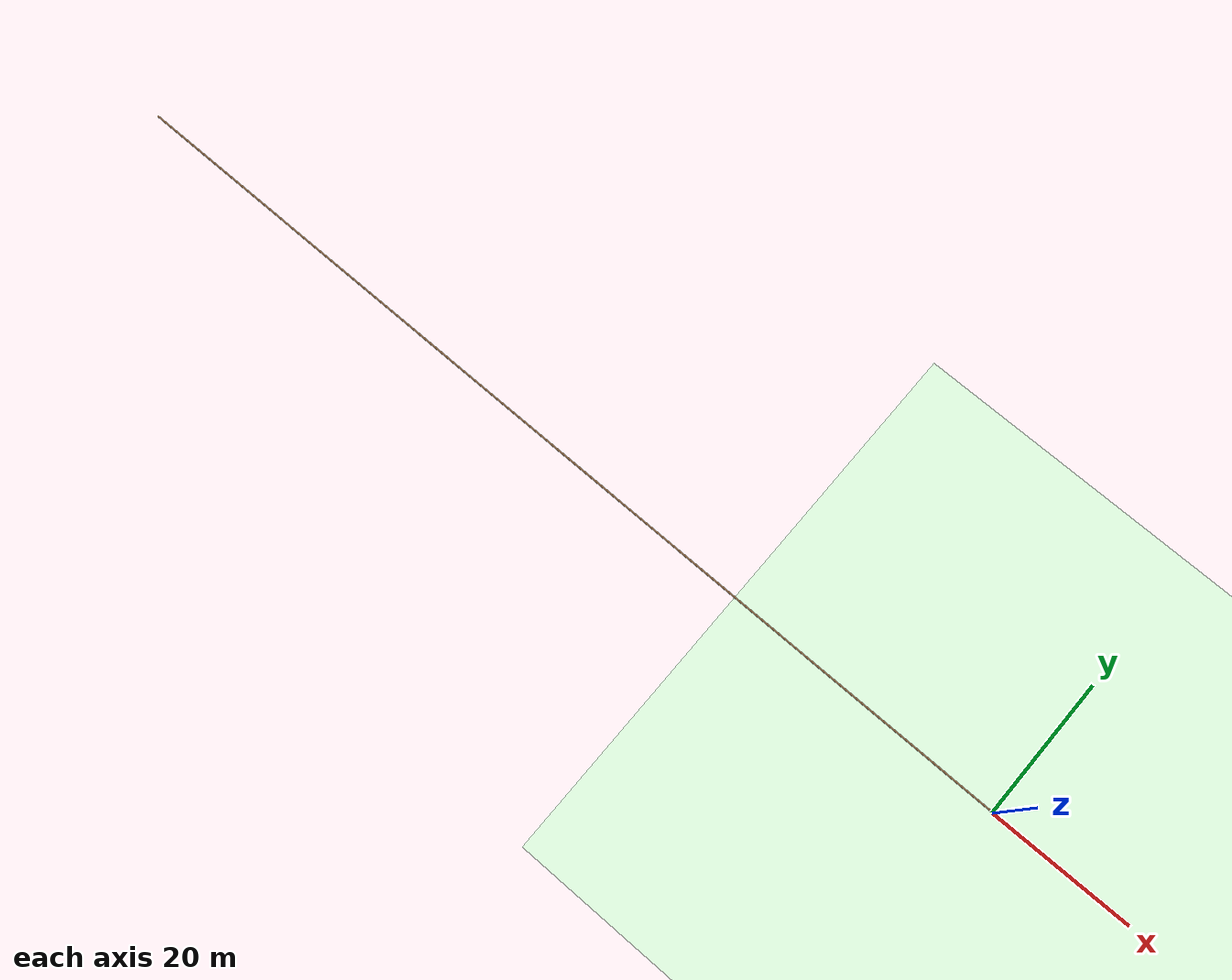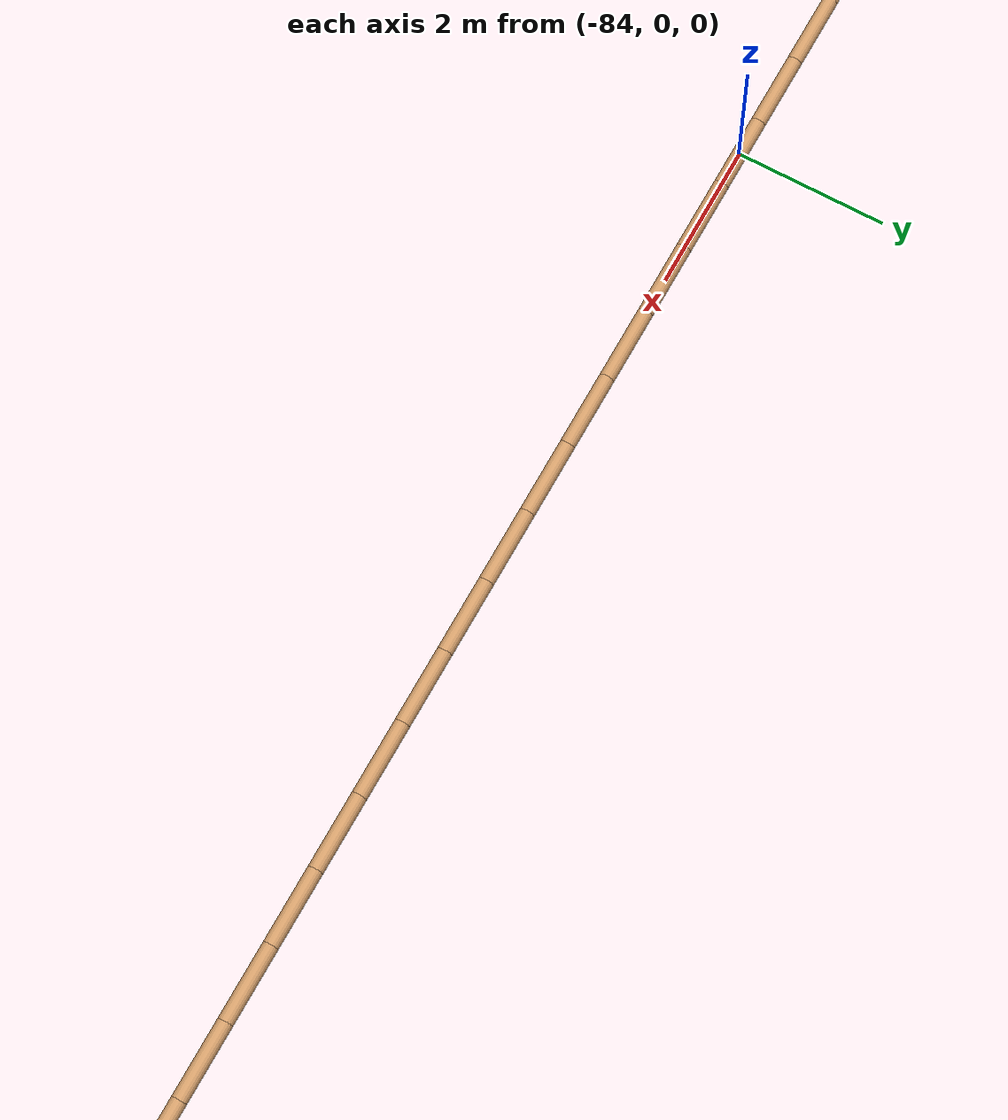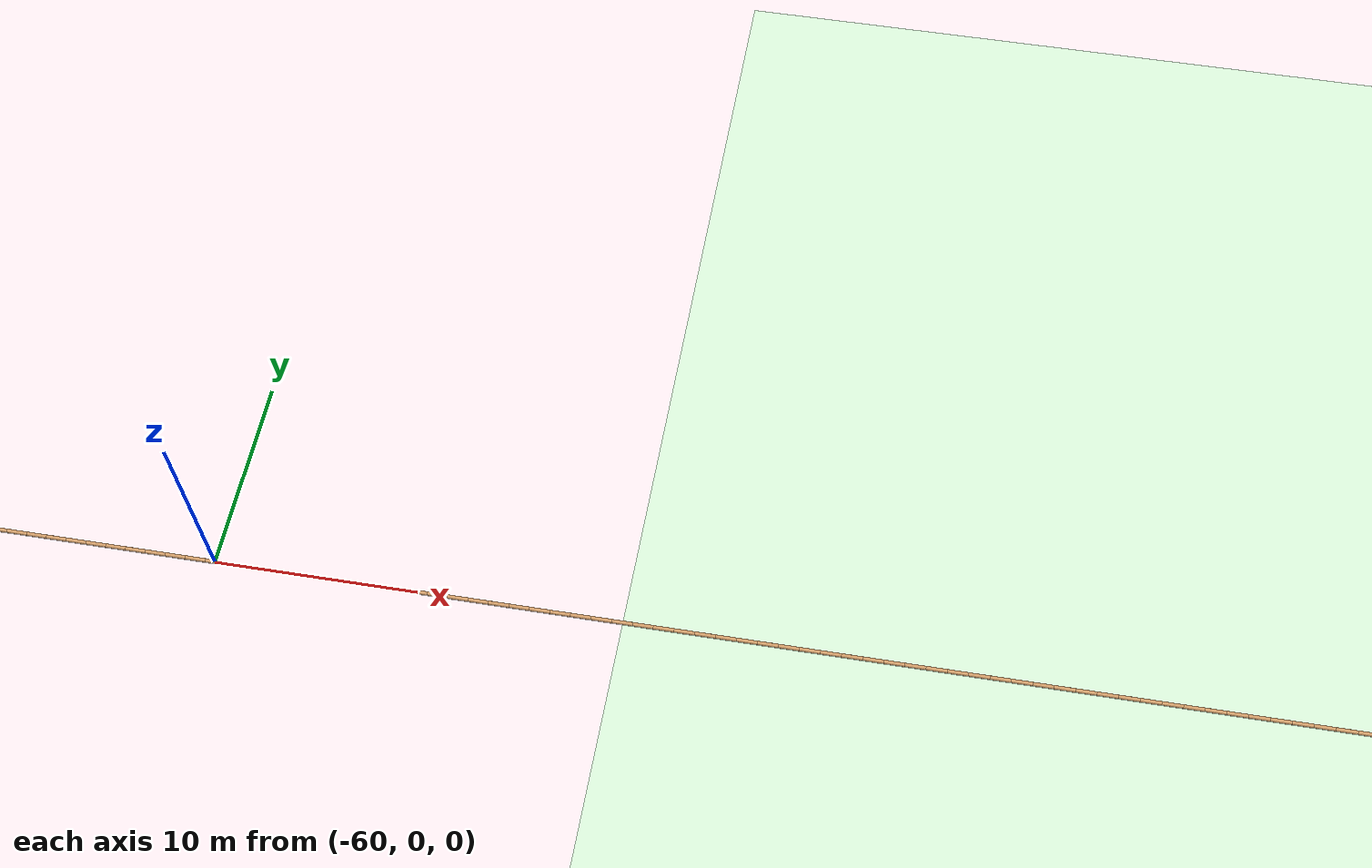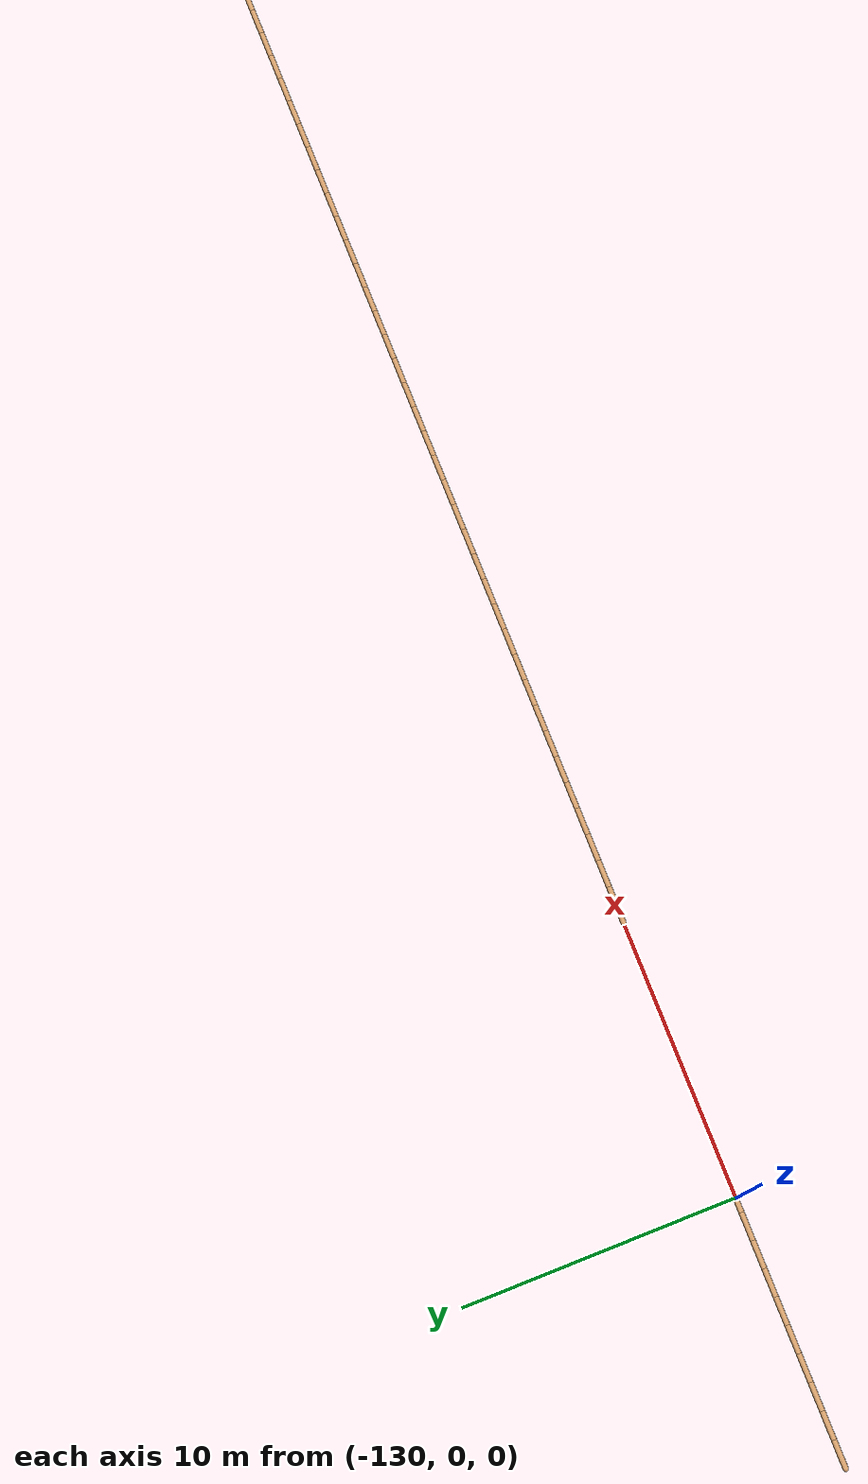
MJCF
<mujoco model="swimmer">
  <compiler angle="degree" coordinate="local" inertiafromgeom="true"/>
  <option collision="predefined" density="4000" integrator="RK4" timestep="0.01" viscosity="0.1"/>
  <default>
    <geom conaffinity="1" condim="1" contype="1" material="geom" rgba="0.8 0.6 .4 1"/>
    <joint armature='0.1'  />
  </default>
  <asset>
    <texture builtin="gradient" height="100" rgb1="1 1 1" rgb2="0 0 0" type="skybox" width="100"/>
    <texture builtin="flat" height="1278" mark="cross" markrgb="1 1 1" name="texgeom" random="0.01" rgb1="0.8 0.6 0.4" rgb2="0.8 0.6 0.4" type="cube" width="127"/>
    <texture builtin="checker" height="100" name="texplane" rgb1="0 0 0" rgb2="0.8 0.8 0.8" type="2d" width="100"/>
    <material name="MatPlane" reflectance="0.5" shininess="1" specular="1" texrepeat="30 30" texture="texplane"/>
    <material name="geom" texture="texgeom" texuniform="true"/>
  </asset>
  <worldbody>
    <light cutoff="100" diffuse="1 1 1" dir="-0 0 -1.3" directional="true" exponent="1" pos="0 0 1.3" specular=".1 .1 .1"/>
    <geom conaffinity="1" condim="3" material="MatPlane" name="floor" pos="0 0 -0.1" rgba="0.8 0.9 0.8 1" size="40 40 0.1" type="plane"/>
    <!--  ================= SWIMMER ================= /-->
    <body name="torso" pos="0 0 0">
      <geom density="1000" fromto="1.5 0 0 0.5 0 0" size="0.1" type="capsule"/>
      <joint axis="1 0 0" name="slider1" pos="0 0 0" type="slide"/>
      <joint axis="0 1 0" name="slider2" pos="0 0 0" type="slide"/>
      <joint axis="0 0 1" name="rot" pos="0 0 0" type="hinge"/>
      <body name="mid0" pos="0.5 0 0">
        <geom density="1000" fromto="0 0 0 -1 0 0" size="0.1" type="capsule"/>
        <joint axis="0 0 1" limited="true" name="rot0" pos="0 0 0" range="-100 100" type="hinge"/>

        <body name="mid1" pos="-1 0 0">
          <geom density="1000" fromto="0 0 0 -1 0 0" size="0.1" type="capsule"/>
          <joint axis="0 0 1" limited="true" name="rot1" pos="0 0 0" range="-100 100" type="hinge"/>

        <body name="mid2" pos="-1 0 0">
          <geom density="1000" fromto="0 0 0 -1 0 0" size="0.1" type="capsule"/>
          <joint axis="0 0 -1" limited="true" name="rot2" pos="0 0 0" range="-100 100" type="hinge"/>

        <body name="mid3" pos="-1 0 0">
          <geom density="1000" fromto="0 0 0 -1 0 0" size="0.1" type="capsule"/>
          <joint axis="0 0 1" limited="true" name="rot3" pos="0 0 0" range="-100 100" type="hinge"/>

        <body name="mid4" pos="-1 0 0">
          <geom density="1000" fromto="0 0 0 -1 0 0" size="0.1" type="capsule"/>
          <joint axis="0 0 -1" limited="true" name="rot4" pos="0 0 0" range="-100 100" type="hinge"/>

        <body name="mid5" pos="-1 0 0">
          <geom density="1000" fromto="0 0 0 -1 0 0" size="0.1" type="capsule"/>
          <joint axis="0 0 1" limited="true" name="rot5" pos="0 0 0" range="-100 100" type="hinge"/>

        <body name="mid6" pos="-1 0 0">
          <geom density="1000" fromto="0 0 0 -1 0 0" size="0.1" type="capsule"/>
          <joint axis="0 0 -1" limited="true" name="rot6" pos="0 0 0" range="-100 100" type="hinge"/>

        <body name="mid7" pos="-1 0 0">
          <geom density="1000" fromto="0 0 0 -1 0 0" size="0.1" type="capsule"/>
          <joint axis="0 0 1" limited="true" name="rot7" pos="0 0 0" range="-100 100" type="hinge"/>

        <body name="mid8" pos="-1 0 0">
          <geom density="1000" fromto="0 0 0 -1 0 0" size="0.1" type="capsule"/>
          <joint axis="0 0 -1" limited="true" name="rot8" pos="0 0 0" range="-100 100" type="hinge"/>

        <body name="mid9" pos="-1 0 0">
          <geom density="1000" fromto="0 0 0 -1 0 0" size="0.1" type="capsule"/>
          <joint axis="0 0 1" limited="true" name="rot9" pos="0 0 0" range="-100 100" type="hinge"/>

        <body name="mid10" pos="-1 0 0">
          <geom density="1000" fromto="0 0 0 -1 0 0" size="0.1" type="capsule"/>
          <joint axis="0 0 -1" limited="true" name="rot10" pos="0 0 0" range="-100 100" type="hinge"/>

        <body name="mid11" pos="-1 0 0">
          <geom density="1000" fromto="0 0 0 -1 0 0" size="0.1" type="capsule"/>
          <joint axis="0 0 1" limited="true" name="rot11" pos="0 0 0" range="-100 100" type="hinge"/>

        <body name="mid12" pos="-1 0 0">
          <geom density="1000" fromto="0 0 0 -1 0 0" size="0.1" type="capsule"/>
          <joint axis="0 0 -1" limited="true" name="rot12" pos="0 0 0" range="-100 100" type="hinge"/>

        <body name="mid13" pos="-1 0 0">
          <geom density="1000" fromto="0 0 0 -1 0 0" size="0.1" type="capsule"/>
          <joint axis="0 0 1" limited="true" name="rot13" pos="0 0 0" range="-100 100" type="hinge"/>

        <body name="mid14" pos="-1 0 0">
          <geom density="1000" fromto="0 0 0 -1 0 0" size="0.1" type="capsule"/>
          <joint axis="0 0 -1" limited="true" name="rot14" pos="0 0 0" range="-100 100" type="hinge"/>

        <body name="mid15" pos="-1 0 0">
          <geom density="1000" fromto="0 0 0 -1 0 0" size="0.1" type="capsule"/>
          <joint axis="0 0 1" limited="true" name="rot15" pos="0 0 0" range="-100 100" type="hinge"/>

        <body name="mid16" pos="-1 0 0">
          <geom density="1000" fromto="0 0 0 -1 0 0" size="0.1" type="capsule"/>
          <joint axis="0 0 -1" limited="true" name="rot16" pos="0 0 0" range="-100 100" type="hinge"/>

        <body name="mid17" pos="-1 0 0">
          <geom density="1000" fromto="0 0 0 -1 0 0" size="0.1" type="capsule"/>
          <joint axis="0 0 1" limited="true" name="rot17" pos="0 0 0" range="-100 100" type="hinge"/>

        <body name="mid18" pos="-1 0 0">
          <geom density="1000" fromto="0 0 0 -1 0 0" size="0.1" type="capsule"/>
          <joint axis="0 0 -1" limited="true" name="rot18" pos="0 0 0" range="-100 100" type="hinge"/>

        <body name="mid19" pos="-1 0 0">
          <geom density="1000" fromto="0 0 0 -1 0 0" size="0.1" type="capsule"/>
          <joint axis="0 0 1" limited="true" name="rot19" pos="0 0 0" range="-100 100" type="hinge"/>

        <body name="mid20" pos="-1 0 0">
          <geom density="1000" fromto="0 0 0 -1 0 0" size="0.1" type="capsule"/>
          <joint axis="0 0 -1" limited="true" name="rot20" pos="0 0 0" range="-100 100" type="hinge"/>

        <body name="mid21" pos="-1 0 0">
          <geom density="1000" fromto="0 0 0 -1 0 0" size="0.1" type="capsule"/>
          <joint axis="0 0 1" limited="true" name="rot21" pos="0 0 0" range="-100 100" type="hinge"/>

        <body name="mid22" pos="-1 0 0">
          <geom density="1000" fromto="0 0 0 -1 0 0" size="0.1" type="capsule"/>
          <joint axis="0 0 -1" limited="true" name="rot22" pos="0 0 0" range="-100 100" type="hinge"/>

        <body name="mid23" pos="-1 0 0">
          <geom density="1000" fromto="0 0 0 -1 0 0" size="0.1" type="capsule"/>
          <joint axis="0 0 1" limited="true" name="rot23" pos="0 0 0" range="-100 100" type="hinge"/>

        <body name="mid24" pos="-1 0 0">
          <geom density="1000" fromto="0 0 0 -1 0 0" size="0.1" type="capsule"/>
          <joint axis="0 0 -1" limited="true" name="rot24" pos="0 0 0" range="-100 100" type="hinge"/>

        <body name="mid25" pos="-1 0 0">
          <geom density="1000" fromto="0 0 0 -1 0 0" size="0.1" type="capsule"/>
          <joint axis="0 0 1" limited="true" name="rot25" pos="0 0 0" range="-100 100" type="hinge"/>

        <body name="mid26" pos="-1 0 0">
          <geom density="1000" fromto="0 0 0 -1 0 0" size="0.1" type="capsule"/>
          <joint axis="0 0 -1" limited="true" name="rot26" pos="0 0 0" range="-100 100" type="hinge"/>

        <body name="mid27" pos="-1 0 0">
          <geom density="1000" fromto="0 0 0 -1 0 0" size="0.1" type="capsule"/>
          <joint axis="0 0 1" limited="true" name="rot27" pos="0 0 0" range="-100 100" type="hinge"/>

        <body name="mid28" pos="-1 0 0">
          <geom density="1000" fromto="0 0 0 -1 0 0" size="0.1" type="capsule"/>
          <joint axis="0 0 -1" limited="true" name="rot28" pos="0 0 0" range="-100 100" type="hinge"/>

        <body name="mid29" pos="-1 0 0">
          <geom density="1000" fromto="0 0 0 -1 0 0" size="0.1" type="capsule"/>
          <joint axis="0 0 1" limited="true" name="rot29" pos="0 0 0" range="-100 100" type="hinge"/>

        <body name="mid30" pos="-1 0 0">
          <geom density="1000" fromto="0 0 0 -1 0 0" size="0.1" type="capsule"/>
          <joint axis="0 0 -1" limited="true" name="rot30" pos="0 0 0" range="-100 100" type="hinge"/>

        <body name="mid31" pos="-1 0 0">
          <geom density="1000" fromto="0 0 0 -1 0 0" size="0.1" type="capsule"/>
          <joint axis="0 0 1" limited="true" name="rot31" pos="0 0 0" range="-100 100" type="hinge"/>

        <body name="mid32" pos="-1 0 0">
          <geom density="1000" fromto="0 0 0 -1 0 0" size="0.1" type="capsule"/>
          <joint axis="0 0 -1" limited="true" name="rot32" pos="0 0 0" range="-100 100" type="hinge"/>

        <body name="mid33" pos="-1 0 0">
          <geom density="1000" fromto="0 0 0 -1 0 0" size="0.1" type="capsule"/>
          <joint axis="0 0 1" limited="true" name="rot33" pos="0 0 0" range="-100 100" type="hinge"/>

        <body name="mid34" pos="-1 0 0">
          <geom density="1000" fromto="0 0 0 -1 0 0" size="0.1" type="capsule"/>
          <joint axis="0 0 -1" limited="true" name="rot34" pos="0 0 0" range="-100 100" type="hinge"/>

        <body name="mid35" pos="-1 0 0">
          <geom density="1000" fromto="0 0 0 -1 0 0" size="0.1" type="capsule"/>
          <joint axis="0 0 1" limited="true" name="rot35" pos="0 0 0" range="-100 100" type="hinge"/>

        <body name="mid36" pos="-1 0 0">
          <geom density="1000" fromto="0 0 0 -1 0 0" size="0.1" type="capsule"/>
          <joint axis="0 0 -1" limited="true" name="rot36" pos="0 0 0" range="-100 100" type="hinge"/>

        <body name="mid37" pos="-1 0 0">
          <geom density="1000" fromto="0 0 0 -1 0 0" size="0.1" type="capsule"/>
          <joint axis="0 0 1" limited="true" name="rot37" pos="0 0 0" range="-100 100" type="hinge"/>

        <body name="mid38" pos="-1 0 0">
          <geom density="1000" fromto="0 0 0 -1 0 0" size="0.1" type="capsule"/>
          <joint axis="0 0 -1" limited="true" name="rot38" pos="0 0 0" range="-100 100" type="hinge"/>

        <body name="mid39" pos="-1 0 0">
          <geom density="1000" fromto="0 0 0 -1 0 0" size="0.1" type="capsule"/>
          <joint axis="0 0 1" limited="true" name="rot39" pos="0 0 0" range="-100 100" type="hinge"/>

        <body name="mid40" pos="-1 0 0">
          <geom density="1000" fromto="0 0 0 -1 0 0" size="0.1" type="capsule"/>
          <joint axis="0 0 -1" limited="true" name="rot40" pos="0 0 0" range="-100 100" type="hinge"/>

        <body name="mid41" pos="-1 0 0">
          <geom density="1000" fromto="0 0 0 -1 0 0" size="0.1" type="capsule"/>
          <joint axis="0 0 1" limited="true" name="rot41" pos="0 0 0" range="-100 100" type="hinge"/>

        <body name="mid42" pos="-1 0 0">
          <geom density="1000" fromto="0 0 0 -1 0 0" size="0.1" type="capsule"/>
          <joint axis="0 0 -1" limited="true" name="rot42" pos="0 0 0" range="-100 100" type="hinge"/>

        <body name="mid43" pos="-1 0 0">
          <geom density="1000" fromto="0 0 0 -1 0 0" size="0.1" type="capsule"/>
          <joint axis="0 0 1" limited="true" name="rot43" pos="0 0 0" range="-100 100" type="hinge"/>

        <body name="mid44" pos="-1 0 0">
          <geom density="1000" fromto="0 0 0 -1 0 0" size="0.1" type="capsule"/>
          <joint axis="0 0 -1" limited="true" name="rot44" pos="0 0 0" range="-100 100" type="hinge"/>

        <body name="mid45" pos="-1 0 0">
          <geom density="1000" fromto="0 0 0 -1 0 0" size="0.1" type="capsule"/>
          <joint axis="0 0 1" limited="true" name="rot45" pos="0 0 0" range="-100 100" type="hinge"/>

        <body name="mid46" pos="-1 0 0">
          <geom density="1000" fromto="0 0 0 -1 0 0" size="0.1" type="capsule"/>
          <joint axis="0 0 -1" limited="true" name="rot46" pos="0 0 0" range="-100 100" type="hinge"/>

        <body name="mid47" pos="-1 0 0">
          <geom density="1000" fromto="0 0 0 -1 0 0" size="0.1" type="capsule"/>
          <joint axis="0 0 1" limited="true" name="rot47" pos="0 0 0" range="-100 100" type="hinge"/>

        <body name="mid48" pos="-1 0 0">
          <geom density="1000" fromto="0 0 0 -1 0 0" size="0.1" type="capsule"/>
          <joint axis="0 0 -1" limited="true" name="rot48" pos="0 0 0" range="-100 100" type="hinge"/>

        <body name="mid49" pos="-1 0 0">
          <geom density="1000" fromto="0 0 0 -1 0 0" size="0.1" type="capsule"/>
          <joint axis="0 0 1" limited="true" name="rot49" pos="0 0 0" range="-100 100" type="hinge"/>

        <body name="mid50" pos="-1 0 0">
          <geom density="1000" fromto="0 0 0 -1 0 0" size="0.1" type="capsule"/>
          <joint axis="0 0 -1" limited="true" name="rot50" pos="0 0 0" range="-100 100" type="hinge"/>

        <body name="mid51" pos="-1 0 0">
          <geom density="1000" fromto="0 0 0 -1 0 0" size="0.1" type="capsule"/>
          <joint axis="0 0 1" limited="true" name="rot51" pos="0 0 0" range="-100 100" type="hinge"/>

        <body name="mid52" pos="-1 0 0">
          <geom density="1000" fromto="0 0 0 -1 0 0" size="0.1" type="capsule"/>
          <joint axis="0 0 -1" limited="true" name="rot52" pos="0 0 0" range="-100 100" type="hinge"/>

        <body name="mid53" pos="-1 0 0">
          <geom density="1000" fromto="0 0 0 -1 0 0" size="0.1" type="capsule"/>
          <joint axis="0 0 1" limited="true" name="rot53" pos="0 0 0" range="-100 100" type="hinge"/>

        <body name="mid54" pos="-1 0 0">
          <geom density="1000" fromto="0 0 0 -1 0 0" size="0.1" type="capsule"/>
          <joint axis="0 0 -1" limited="true" name="rot54" pos="0 0 0" range="-100 100" type="hinge"/>

        <body name="mid55" pos="-1 0 0">
          <geom density="1000" fromto="0 0 0 -1 0 0" size="0.1" type="capsule"/>
          <joint axis="0 0 1" limited="true" name="rot55" pos="0 0 0" range="-100 100" type="hinge"/>

        <body name="mid56" pos="-1 0 0">
          <geom density="1000" fromto="0 0 0 -1 0 0" size="0.1" type="capsule"/>
          <joint axis="0 0 -1" limited="true" name="rot56" pos="0 0 0" range="-100 100" type="hinge"/>

        <body name="mid57" pos="-1 0 0">
          <geom density="1000" fromto="0 0 0 -1 0 0" size="0.1" type="capsule"/>
          <joint axis="0 0 1" limited="true" name="rot57" pos="0 0 0" range="-100 100" type="hinge"/>

        <body name="mid58" pos="-1 0 0">
          <geom density="1000" fromto="0 0 0 -1 0 0" size="0.1" type="capsule"/>
          <joint axis="0 0 -1" limited="true" name="rot58" pos="0 0 0" range="-100 100" type="hinge"/>

        <body name="mid59" pos="-1 0 0">
          <geom density="1000" fromto="0 0 0 -1 0 0" size="0.1" type="capsule"/>
          <joint axis="0 0 1" limited="true" name="rot59" pos="0 0 0" range="-100 100" type="hinge"/>

        <body name="mid60" pos="-1 0 0">
          <geom density="1000" fromto="0 0 0 -1 0 0" size="0.1" type="capsule"/>
          <joint axis="0 0 -1" limited="true" name="rot60" pos="0 0 0" range="-100 100" type="hinge"/>

        <body name="mid61" pos="-1 0 0">
          <geom density="1000" fromto="0 0 0 -1 0 0" size="0.1" type="capsule"/>
          <joint axis="0 0 1" limited="true" name="rot61" pos="0 0 0" range="-100 100" type="hinge"/>

        <body name="mid62" pos="-1 0 0">
          <geom density="1000" fromto="0 0 0 -1 0 0" size="0.1" type="capsule"/>
          <joint axis="0 0 -1" limited="true" name="rot62" pos="0 0 0" range="-100 100" type="hinge"/>

        <body name="mid63" pos="-1 0 0">
          <geom density="1000" fromto="0 0 0 -1 0 0" size="0.1" type="capsule"/>
          <joint axis="0 0 1" limited="true" name="rot63" pos="0 0 0" range="-100 100" type="hinge"/>

        <body name="mid64" pos="-1 0 0">
          <geom density="1000" fromto="0 0 0 -1 0 0" size="0.1" type="capsule"/>
          <joint axis="0 0 -1" limited="true" name="rot64" pos="0 0 0" range="-100 100" type="hinge"/>

        <body name="mid65" pos="-1 0 0">
          <geom density="1000" fromto="0 0 0 -1 0 0" size="0.1" type="capsule"/>
          <joint axis="0 0 1" limited="true" name="rot65" pos="0 0 0" range="-100 100" type="hinge"/>

        <body name="mid66" pos="-1 0 0">
          <geom density="1000" fromto="0 0 0 -1 0 0" size="0.1" type="capsule"/>
          <joint axis="0 0 -1" limited="true" name="rot66" pos="0 0 0" range="-100 100" type="hinge"/>

        <body name="mid67" pos="-1 0 0">
          <geom density="1000" fromto="0 0 0 -1 0 0" size="0.1" type="capsule"/>
          <joint axis="0 0 1" limited="true" name="rot67" pos="0 0 0" range="-100 100" type="hinge"/>

        <body name="mid68" pos="-1 0 0">
          <geom density="1000" fromto="0 0 0 -1 0 0" size="0.1" type="capsule"/>
          <joint axis="0 0 -1" limited="true" name="rot68" pos="0 0 0" range="-100 100" type="hinge"/>

        <body name="mid69" pos="-1 0 0">
          <geom density="1000" fromto="0 0 0 -1 0 0" size="0.1" type="capsule"/>
          <joint axis="0 0 1" limited="true" name="rot69" pos="0 0 0" range="-100 100" type="hinge"/>

        <body name="mid70" pos="-1 0 0">
          <geom density="1000" fromto="0 0 0 -1 0 0" size="0.1" type="capsule"/>
          <joint axis="0 0 -1" limited="true" name="rot70" pos="0 0 0" range="-100 100" type="hinge"/>

        <body name="mid71" pos="-1 0 0">
          <geom density="1000" fromto="0 0 0 -1 0 0" size="0.1" type="capsule"/>
          <joint axis="0 0 1" limited="true" name="rot71" pos="0 0 0" range="-100 100" type="hinge"/>

        <body name="mid72" pos="-1 0 0">
          <geom density="1000" fromto="0 0 0 -1 0 0" size="0.1" type="capsule"/>
          <joint axis="0 0 -1" limited="true" name="rot72" pos="0 0 0" range="-100 100" type="hinge"/>

        <body name="mid73" pos="-1 0 0">
          <geom density="1000" fromto="0 0 0 -1 0 0" size="0.1" type="capsule"/>
          <joint axis="0 0 1" limited="true" name="rot73" pos="0 0 0" range="-100 100" type="hinge"/>

        <body name="mid74" pos="-1 0 0">
          <geom density="1000" fromto="0 0 0 -1 0 0" size="0.1" type="capsule"/>
          <joint axis="0 0 -1" limited="true" name="rot74" pos="0 0 0" range="-100 100" type="hinge"/>

        <body name="mid75" pos="-1 0 0">
          <geom density="1000" fromto="0 0 0 -1 0 0" size="0.1" type="capsule"/>
          <joint axis="0 0 1" limited="true" name="rot75" pos="0 0 0" range="-100 100" type="hinge"/>

        <body name="mid76" pos="-1 0 0">
          <geom density="1000" fromto="0 0 0 -1 0 0" size="0.1" type="capsule"/>
          <joint axis="0 0 -1" limited="true" name="rot76" pos="0 0 0" range="-100 100" type="hinge"/>

        <body name="mid77" pos="-1 0 0">
          <geom density="1000" fromto="0 0 0 -1 0 0" size="0.1" type="capsule"/>
          <joint axis="0 0 1" limited="true" name="rot77" pos="0 0 0" range="-100 100" type="hinge"/>

        <body name="mid78" pos="-1 0 0">
          <geom density="1000" fromto="0 0 0 -1 0 0" size="0.1" type="capsule"/>
          <joint axis="0 0 -1" limited="true" name="rot78" pos="0 0 0" range="-100 100" type="hinge"/>

        <body name="mid79" pos="-1 0 0">
          <geom density="1000" fromto="0 0 0 -1 0 0" size="0.1" type="capsule"/>
          <joint axis="0 0 1" limited="true" name="rot79" pos="0 0 0" range="-100 100" type="hinge"/>

        <body name="mid80" pos="-1 0 0">
          <geom density="1000" fromto="0 0 0 -1 0 0" size="0.1" type="capsule"/>
          <joint axis="0 0 -1" limited="true" name="rot80" pos="0 0 0" range="-100 100" type="hinge"/>

        <body name="mid81" pos="-1 0 0">
          <geom density="1000" fromto="0 0 0 -1 0 0" size="0.1" type="capsule"/>
          <joint axis="0 0 1" limited="true" name="rot81" pos="0 0 0" range="-100 100" type="hinge"/>

        <body name="mid82" pos="-1 0 0">
          <geom density="1000" fromto="0 0 0 -1 0 0" size="0.1" type="capsule"/>
          <joint axis="0 0 -1" limited="true" name="rot82" pos="0 0 0" range="-100 100" type="hinge"/>

        <body name="mid83" pos="-1 0 0">
          <geom density="1000" fromto="0 0 0 -1 0 0" size="0.1" type="capsule"/>
          <joint axis="0 0 1" limited="true" name="rot83" pos="0 0 0" range="-100 100" type="hinge"/>

        <body name="mid84" pos="-1 0 0">
          <geom density="1000" fromto="0 0 0 -1 0 0" size="0.1" type="capsule"/>
          <joint axis="0 0 -1" limited="true" name="rot84" pos="0 0 0" range="-100 100" type="hinge"/>

        <body name="mid85" pos="-1 0 0">
          <geom density="1000" fromto="0 0 0 -1 0 0" size="0.1" type="capsule"/>
          <joint axis="0 0 1" limited="true" name="rot85" pos="0 0 0" range="-100 100" type="hinge"/>

        <body name="mid86" pos="-1 0 0">
          <geom density="1000" fromto="0 0 0 -1 0 0" size="0.1" type="capsule"/>
          <joint axis="0 0 -1" limited="true" name="rot86" pos="0 0 0" range="-100 100" type="hinge"/>

        <body name="mid87" pos="-1 0 0">
          <geom density="1000" fromto="0 0 0 -1 0 0" size="0.1" type="capsule"/>
          <joint axis="0 0 1" limited="true" name="rot87" pos="0 0 0" range="-100 100" type="hinge"/>

        <body name="mid88" pos="-1 0 0">
          <geom density="1000" fromto="0 0 0 -1 0 0" size="0.1" type="capsule"/>
          <joint axis="0 0 -1" limited="true" name="rot88" pos="0 0 0" range="-100 100" type="hinge"/>

        <body name="mid89" pos="-1 0 0">
          <geom density="1000" fromto="0 0 0 -1 0 0" size="0.1" type="capsule"/>
          <joint axis="0 0 1" limited="true" name="rot89" pos="0 0 0" range="-100 100" type="hinge"/>

        <body name="mid90" pos="-1 0 0">
          <geom density="1000" fromto="0 0 0 -1 0 0" size="0.1" type="capsule"/>
          <joint axis="0 0 -1" limited="true" name="rot90" pos="0 0 0" range="-100 100" type="hinge"/>

        <body name="mid91" pos="-1 0 0">
          <geom density="1000" fromto="0 0 0 -1 0 0" size="0.1" type="capsule"/>
          <joint axis="0 0 1" limited="true" name="rot91" pos="0 0 0" range="-100 100" type="hinge"/>

        <body name="mid92" pos="-1 0 0">
          <geom density="1000" fromto="0 0 0 -1 0 0" size="0.1" type="capsule"/>
          <joint axis="0 0 -1" limited="true" name="rot92" pos="0 0 0" range="-100 100" type="hinge"/>

        <body name="mid93" pos="-1 0 0">
          <geom density="1000" fromto="0 0 0 -1 0 0" size="0.1" type="capsule"/>
          <joint axis="0 0 1" limited="true" name="rot93" pos="0 0 0" range="-100 100" type="hinge"/>

        <body name="mid94" pos="-1 0 0">
          <geom density="1000" fromto="0 0 0 -1 0 0" size="0.1" type="capsule"/>
          <joint axis="0 0 -1" limited="true" name="rot94" pos="0 0 0" range="-100 100" type="hinge"/>

        <body name="mid95" pos="-1 0 0">
          <geom density="1000" fromto="0 0 0 -1 0 0" size="0.1" type="capsule"/>
          <joint axis="0 0 1" limited="true" name="rot95" pos="0 0 0" range="-100 100" type="hinge"/>

        <body name="mid96" pos="-1 0 0">
          <geom density="1000" fromto="0 0 0 -1 0 0" size="0.1" type="capsule"/>
          <joint axis="0 0 -1" limited="true" name="rot96" pos="0 0 0" range="-100 100" type="hinge"/>

        <body name="mid97" pos="-1 0 0">
          <geom density="1000" fromto="0 0 0 -1 0 0" size="0.1" type="capsule"/>
          <joint axis="0 0 1" limited="true" name="rot97" pos="0 0 0" range="-100 100" type="hinge"/>

        <body name="mid98" pos="-1 0 0">
          <geom density="1000" fromto="0 0 0 -1 0 0" size="0.1" type="capsule"/>
          <joint axis="0 0 -1" limited="true" name="rot98" pos="0 0 0" range="-100 100" type="hinge"/>

        <body name="mid99" pos="-1 0 0">
          <geom density="1000" fromto="0 0 0 -1 0 0" size="0.1" type="capsule"/>
          <joint axis="0 0 1" limited="true" name="rot99" pos="0 0 0" range="-100 100" type="hinge"/>

        <body name="mid100" pos="-1 0 0">
          <geom density="1000" fromto="0 0 0 -1 0 0" size="0.1" type="capsule"/>
          <joint axis="0 0 -1" limited="true" name="rot100" pos="0 0 0" range="-100 100" type="hinge"/>

        <body name="mid101" pos="-1 0 0">
          <geom density="1000" fromto="0 0 0 -1 0 0" size="0.1" type="capsule"/>
          <joint axis="0 0 1" limited="true" name="rot101" pos="0 0 0" range="-100 100" type="hinge"/>

        <body name="mid102" pos="-1 0 0">
          <geom density="1000" fromto="0 0 0 -1 0 0" size="0.1" type="capsule"/>
          <joint axis="0 0 -1" limited="true" name="rot102" pos="0 0 0" range="-100 100" type="hinge"/>

        <body name="mid103" pos="-1 0 0">
          <geom density="1000" fromto="0 0 0 -1 0 0" size="0.1" type="capsule"/>
          <joint axis="0 0 1" limited="true" name="rot103" pos="0 0 0" range="-100 100" type="hinge"/>

        <body name="mid104" pos="-1 0 0">
          <geom density="1000" fromto="0 0 0 -1 0 0" size="0.1" type="capsule"/>
          <joint axis="0 0 -1" limited="true" name="rot104" pos="0 0 0" range="-100 100" type="hinge"/>

        <body name="mid105" pos="-1 0 0">
          <geom density="1000" fromto="0 0 0 -1 0 0" size="0.1" type="capsule"/>
          <joint axis="0 0 1" limited="true" name="rot105" pos="0 0 0" range="-100 100" type="hinge"/>

        <body name="mid106" pos="-1 0 0">
          <geom density="1000" fromto="0 0 0 -1 0 0" size="0.1" type="capsule"/>
          <joint axis="0 0 -1" limited="true" name="rot106" pos="0 0 0" range="-100 100" type="hinge"/>

        <body name="mid107" pos="-1 0 0">
          <geom density="1000" fromto="0 0 0 -1 0 0" size="0.1" type="capsule"/>
          <joint axis="0 0 1" limited="true" name="rot107" pos="0 0 0" range="-100 100" type="hinge"/>

        <body name="mid108" pos="-1 0 0">
          <geom density="1000" fromto="0 0 0 -1 0 0" size="0.1" type="capsule"/>
          <joint axis="0 0 -1" limited="true" name="rot108" pos="0 0 0" range="-100 100" type="hinge"/>

        <body name="mid109" pos="-1 0 0">
          <geom density="1000" fromto="0 0 0 -1 0 0" size="0.1" type="capsule"/>
          <joint axis="0 0 1" limited="true" name="rot109" pos="0 0 0" range="-100 100" type="hinge"/>

        <body name="mid110" pos="-1 0 0">
          <geom density="1000" fromto="0 0 0 -1 0 0" size="0.1" type="capsule"/>
          <joint axis="0 0 -1" limited="true" name="rot110" pos="0 0 0" range="-100 100" type="hinge"/>

        <body name="mid111" pos="-1 0 0">
          <geom density="1000" fromto="0 0 0 -1 0 0" size="0.1" type="capsule"/>
          <joint axis="0 0 1" limited="true" name="rot111" pos="0 0 0" range="-100 100" type="hinge"/>

        <body name="mid112" pos="-1 0 0">
          <geom density="1000" fromto="0 0 0 -1 0 0" size="0.1" type="capsule"/>
          <joint axis="0 0 -1" limited="true" name="rot112" pos="0 0 0" range="-100 100" type="hinge"/>

        <body name="mid113" pos="-1 0 0">
          <geom density="1000" fromto="0 0 0 -1 0 0" size="0.1" type="capsule"/>
          <joint axis="0 0 1" limited="true" name="rot113" pos="0 0 0" range="-100 100" type="hinge"/>

        <body name="mid114" pos="-1 0 0">
          <geom density="1000" fromto="0 0 0 -1 0 0" size="0.1" type="capsule"/>
          <joint axis="0 0 -1" limited="true" name="rot114" pos="0 0 0" range="-100 100" type="hinge"/>

        <body name="mid115" pos="-1 0 0">
          <geom density="1000" fromto="0 0 0 -1 0 0" size="0.1" type="capsule"/>
          <joint axis="0 0 1" limited="true" name="rot115" pos="0 0 0" range="-100 100" type="hinge"/>

        <body name="mid116" pos="-1 0 0">
          <geom density="1000" fromto="0 0 0 -1 0 0" size="0.1" type="capsule"/>
          <joint axis="0 0 -1" limited="true" name="rot116" pos="0 0 0" range="-100 100" type="hinge"/>

        <body name="mid117" pos="-1 0 0">
          <geom density="1000" fromto="0 0 0 -1 0 0" size="0.1" type="capsule"/>
          <joint axis="0 0 1" limited="true" name="rot117" pos="0 0 0" range="-100 100" type="hinge"/>

        <body name="mid118" pos="-1 0 0">
          <geom density="1000" fromto="0 0 0 -1 0 0" size="0.1" type="capsule"/>
          <joint axis="0 0 -1" limited="true" name="rot118" pos="0 0 0" range="-100 100" type="hinge"/>

        <body name="mid119" pos="-1 0 0">
          <geom density="1000" fromto="0 0 0 -1 0 0" size="0.1" type="capsule"/>
          <joint axis="0 0 1" limited="true" name="rot119" pos="0 0 0" range="-100 100" type="hinge"/>

        <body name="mid120" pos="-1 0 0">
          <geom density="1000" fromto="0 0 0 -1 0 0" size="0.1" type="capsule"/>
          <joint axis="0 0 -1" limited="true" name="rot120" pos="0 0 0" range="-100 100" type="hinge"/>

        <body name="mid121" pos="-1 0 0">
          <geom density="1000" fromto="0 0 0 -1 0 0" size="0.1" type="capsule"/>
          <joint axis="0 0 1" limited="true" name="rot121" pos="0 0 0" range="-100 100" type="hinge"/>

        <body name="mid122" pos="-1 0 0">
          <geom density="1000" fromto="0 0 0 -1 0 0" size="0.1" type="capsule"/>
          <joint axis="0 0 -1" limited="true" name="rot122" pos="0 0 0" range="-100 100" type="hinge"/>

        <body name="mid123" pos="-1 0 0">
          <geom density="1000" fromto="0 0 0 -1 0 0" size="0.1" type="capsule"/>
          <joint axis="0 0 1" limited="true" name="rot123" pos="0 0 0" range="-100 100" type="hinge"/>

        <body name="mid124" pos="-1 0 0">
          <geom density="1000" fromto="0 0 0 -1 0 0" size="0.1" type="capsule"/>
          <joint axis="0 0 -1" limited="true" name="rot124" pos="0 0 0" range="-100 100" type="hinge"/>

        <body name="mid125" pos="-1 0 0">
          <geom density="1000" fromto="0 0 0 -1 0 0" size="0.1" type="capsule"/>
          <joint axis="0 0 1" limited="true" name="rot125" pos="0 0 0" range="-100 100" type="hinge"/>

        <body name="mid126" pos="-1 0 0">
          <geom density="1000" fromto="0 0 0 -1 0 0" size="0.1" type="capsule"/>
          <joint axis="0 0 -1" limited="true" name="rot126" pos="0 0 0" range="-100 100" type="hinge"/>

        <body name="mid127" pos="-1 0 0">
          <geom density="1000" fromto="0 0 0 -1 0 0" size="0.1" type="capsule"/>
          <joint axis="0 0 1" limited="true" name="rot127" pos="0 0 0" range="-100 100" type="hinge"/>

        <body name="mid128" pos="-1 0 0">
          <geom density="1000" fromto="0 0 0 -1 0 0" size="0.1" type="capsule"/>
          <joint axis="0 0 -1" limited="true" name="rot128" pos="0 0 0" range="-100 100" type="hinge"/>

        <body name="mid129" pos="-1 0 0">
          <geom density="1000" fromto="0 0 0 -1 0 0" size="0.1" type="capsule"/>
          <joint axis="0 0 1" limited="true" name="rot129" pos="0 0 0" range="-100 100" type="hinge"/>

        <body name="mid130" pos="-1 0 0">
          <geom density="1000" fromto="0 0 0 -1 0 0" size="0.1" type="capsule"/>
          <joint axis="0 0 -1" limited="true" name="rot130" pos="0 0 0" range="-100 100" type="hinge"/>

        <body name="mid131" pos="-1 0 0">
          <geom density="1000" fromto="0 0 0 -1 0 0" size="0.1" type="capsule"/>
          <joint axis="0 0 1" limited="true" name="rot131" pos="0 0 0" range="-100 100" type="hinge"/>

        <body name="mid132" pos="-1 0 0">
          <geom density="1000" fromto="0 0 0 -1 0 0" size="0.1" type="capsule"/>
          <joint axis="0 0 -1" limited="true" name="rot132" pos="0 0 0" range="-100 100" type="hinge"/>

        <body name="mid133" pos="-1 0 0">
          <geom density="1000" fromto="0 0 0 -1 0 0" size="0.1" type="capsule"/>
          <joint axis="0 0 1" limited="true" name="rot133" pos="0 0 0" range="-100 100" type="hinge"/>

        <body name="mid134" pos="-1 0 0">
          <geom density="1000" fromto="0 0 0 -1 0 0" size="0.1" type="capsule"/>
          <joint axis="0 0 -1" limited="true" name="rot134" pos="0 0 0" range="-100 100" type="hinge"/>

        <body name="mid135" pos="-1 0 0">
          <geom density="1000" fromto="0 0 0 -1 0 0" size="0.1" type="capsule"/>
          <joint axis="0 0 1" limited="true" name="rot135" pos="0 0 0" range="-100 100" type="hinge"/>

        <body name="mid136" pos="-1 0 0">
          <geom density="1000" fromto="0 0 0 -1 0 0" size="0.1" type="capsule"/>
          <joint axis="0 0 -1" limited="true" name="rot136" pos="0 0 0" range="-100 100" type="hinge"/>

        <body name="mid137" pos="-1 0 0">
          <geom density="1000" fromto="0 0 0 -1 0 0" size="0.1" type="capsule"/>
          <joint axis="0 0 1" limited="true" name="rot137" pos="0 0 0" range="-100 100" type="hinge"/>

        <body name="mid138" pos="-1 0 0">
          <geom density="1000" fromto="0 0 0 -1 0 0" size="0.1" type="capsule"/>
          <joint axis="0 0 -1" limited="true" name="rot138" pos="0 0 0" range="-100 100" type="hinge"/>

        <body name="back" pos="-1 0 0">
            <geom density="1000" fromto="0 0 0 -1 0 0" size="0.1" type="capsule"/>
            <joint axis="0 0 1" limited="true" name="rot139" pos="0 0 0" range="-100 100" type="hinge"/>
          </body>
        </body>
</body>
</body>
</body>
</body>
</body>
</body>
</body>
</body>
</body>
</body>
</body>
</body>
</body>
</body>
</body>
</body>
</body>
</body>
</body>
</body>
</body>
</body>
</body>
</body>
</body>
</body>
</body>
</body>
</body>
</body>
</body>
</body>
</body>
</body>
</body>
</body>
</body>
</body>
</body>
</body>
</body>
</body>
</body>
</body>
</body>
</body>
</body>
</body>
</body>
</body>
</body>
</body>
</body>
</body>
</body>
</body>
</body>
</body>
</body>
</body>
</body>
</body>
</body>
</body>
</body>
</body>
</body>
</body>
</body>
</body>
</body>
</body>
</body>
</body>
</body>
</body>
</body>
</body>
</body>
</body>
</body>
</body>
</body>
</body>
</body>
</body>
</body>
</body>
</body>
</body>
</body>
</body>
</body>
</body>
</body>
</body>
</body>
</body>
</body>
</body>
</body>
</body>
</body>
</body>
</body>
</body>
</body>
</body>
</body>
</body>
</body>
</body>
</body>
</body>
</body>
</body>
</body>
</body>
</body>
</body>
</body>
</body>
</body>
</body>
</body>
</body>
</body>
</body>
</body>
</body>
</body>
</body>
</body>
</body>
</body>
</body>
</body>

      </body>
    </body>
  </worldbody>
  <actuator>
	 <motor ctrllimited="true" ctrlrange="-1 1" gear="150.0" joint="rot0"/>
	 <motor ctrllimited="true" ctrlrange="-1 1" gear="150.0" joint="rot1"/>
	 <motor ctrllimited="true" ctrlrange="-1 1" gear="150.0" joint="rot2"/>
	 <motor ctrllimited="true" ctrlrange="-1 1" gear="150.0" joint="rot3"/>
	 <motor ctrllimited="true" ctrlrange="-1 1" gear="150.0" joint="rot4"/>
	 <motor ctrllimited="true" ctrlrange="-1 1" gear="150.0" joint="rot5"/>
	 <motor ctrllimited="true" ctrlrange="-1 1" gear="150.0" joint="rot6"/>
	 <motor ctrllimited="true" ctrlrange="-1 1" gear="150.0" joint="rot7"/>
	 <motor ctrllimited="true" ctrlrange="-1 1" gear="150.0" joint="rot8"/>
	 <motor ctrllimited="true" ctrlrange="-1 1" gear="150.0" joint="rot9"/>
	 <motor ctrllimited="true" ctrlrange="-1 1" gear="150.0" joint="rot10"/>
	 <motor ctrllimited="true" ctrlrange="-1 1" gear="150.0" joint="rot11"/>
	 <motor ctrllimited="true" ctrlrange="-1 1" gear="150.0" joint="rot12"/>
	 <motor ctrllimited="true" ctrlrange="-1 1" gear="150.0" joint="rot13"/>
	 <motor ctrllimited="true" ctrlrange="-1 1" gear="150.0" joint="rot14"/>
	 <motor ctrllimited="true" ctrlrange="-1 1" gear="150.0" joint="rot15"/>
	 <motor ctrllimited="true" ctrlrange="-1 1" gear="150.0" joint="rot16"/>
	 <motor ctrllimited="true" ctrlrange="-1 1" gear="150.0" joint="rot17"/>
	 <motor ctrllimited="true" ctrlrange="-1 1" gear="150.0" joint="rot18"/>
	 <motor ctrllimited="true" ctrlrange="-1 1" gear="150.0" joint="rot19"/>
	 <motor ctrllimited="true" ctrlrange="-1 1" gear="150.0" joint="rot20"/>
	 <motor ctrllimited="true" ctrlrange="-1 1" gear="150.0" joint="rot21"/>
	 <motor ctrllimited="true" ctrlrange="-1 1" gear="150.0" joint="rot22"/>
	 <motor ctrllimited="true" ctrlrange="-1 1" gear="150.0" joint="rot23"/>
	 <motor ctrllimited="true" ctrlrange="-1 1" gear="150.0" joint="rot24"/>
	 <motor ctrllimited="true" ctrlrange="-1 1" gear="150.0" joint="rot25"/>
	 <motor ctrllimited="true" ctrlrange="-1 1" gear="150.0" joint="rot26"/>
	 <motor ctrllimited="true" ctrlrange="-1 1" gear="150.0" joint="rot27"/>
	 <motor ctrllimited="true" ctrlrange="-1 1" gear="150.0" joint="rot28"/>
	 <motor ctrllimited="true" ctrlrange="-1 1" gear="150.0" joint="rot29"/>
	 <motor ctrllimited="true" ctrlrange="-1 1" gear="150.0" joint="rot30"/>
	 <motor ctrllimited="true" ctrlrange="-1 1" gear="150.0" joint="rot31"/>
	 <motor ctrllimited="true" ctrlrange="-1 1" gear="150.0" joint="rot32"/>
	 <motor ctrllimited="true" ctrlrange="-1 1" gear="150.0" joint="rot33"/>
	 <motor ctrllimited="true" ctrlrange="-1 1" gear="150.0" joint="rot34"/>
	 <motor ctrllimited="true" ctrlrange="-1 1" gear="150.0" joint="rot35"/>
	 <motor ctrllimited="true" ctrlrange="-1 1" gear="150.0" joint="rot36"/>
	 <motor ctrllimited="true" ctrlrange="-1 1" gear="150.0" joint="rot37"/>
	 <motor ctrllimited="true" ctrlrange="-1 1" gear="150.0" joint="rot38"/>
	 <motor ctrllimited="true" ctrlrange="-1 1" gear="150.0" joint="rot39"/>
	 <motor ctrllimited="true" ctrlrange="-1 1" gear="150.0" joint="rot40"/>
	 <motor ctrllimited="true" ctrlrange="-1 1" gear="150.0" joint="rot41"/>
	 <motor ctrllimited="true" ctrlrange="-1 1" gear="150.0" joint="rot42"/>
	 <motor ctrllimited="true" ctrlrange="-1 1" gear="150.0" joint="rot43"/>
	 <motor ctrllimited="true" ctrlrange="-1 1" gear="150.0" joint="rot44"/>
	 <motor ctrllimited="true" ctrlrange="-1 1" gear="150.0" joint="rot45"/>
	 <motor ctrllimited="true" ctrlrange="-1 1" gear="150.0" joint="rot46"/>
	 <motor ctrllimited="true" ctrlrange="-1 1" gear="150.0" joint="rot47"/>
	 <motor ctrllimited="true" ctrlrange="-1 1" gear="150.0" joint="rot48"/>
	 <motor ctrllimited="true" ctrlrange="-1 1" gear="150.0" joint="rot49"/>
	 <motor ctrllimited="true" ctrlrange="-1 1" gear="150.0" joint="rot50"/>
	 <motor ctrllimited="true" ctrlrange="-1 1" gear="150.0" joint="rot51"/>
	 <motor ctrllimited="true" ctrlrange="-1 1" gear="150.0" joint="rot52"/>
	 <motor ctrllimited="true" ctrlrange="-1 1" gear="150.0" joint="rot53"/>
	 <motor ctrllimited="true" ctrlrange="-1 1" gear="150.0" joint="rot54"/>
	 <motor ctrllimited="true" ctrlrange="-1 1" gear="150.0" joint="rot55"/>
	 <motor ctrllimited="true" ctrlrange="-1 1" gear="150.0" joint="rot56"/>
	 <motor ctrllimited="true" ctrlrange="-1 1" gear="150.0" joint="rot57"/>
	 <motor ctrllimited="true" ctrlrange="-1 1" gear="150.0" joint="rot58"/>
	 <motor ctrllimited="true" ctrlrange="-1 1" gear="150.0" joint="rot59"/>
	 <motor ctrllimited="true" ctrlrange="-1 1" gear="150.0" joint="rot60"/>
	 <motor ctrllimited="true" ctrlrange="-1 1" gear="150.0" joint="rot61"/>
	 <motor ctrllimited="true" ctrlrange="-1 1" gear="150.0" joint="rot62"/>
	 <motor ctrllimited="true" ctrlrange="-1 1" gear="150.0" joint="rot63"/>
	 <motor ctrllimited="true" ctrlrange="-1 1" gear="150.0" joint="rot64"/>
	 <motor ctrllimited="true" ctrlrange="-1 1" gear="150.0" joint="rot65"/>
	 <motor ctrllimited="true" ctrlrange="-1 1" gear="150.0" joint="rot66"/>
	 <motor ctrllimited="true" ctrlrange="-1 1" gear="150.0" joint="rot67"/>
	 <motor ctrllimited="true" ctrlrange="-1 1" gear="150.0" joint="rot68"/>
	 <motor ctrllimited="true" ctrlrange="-1 1" gear="150.0" joint="rot69"/>
	 <motor ctrllimited="true" ctrlrange="-1 1" gear="150.0" joint="rot70"/>
	 <motor ctrllimited="true" ctrlrange="-1 1" gear="150.0" joint="rot71"/>
	 <motor ctrllimited="true" ctrlrange="-1 1" gear="150.0" joint="rot72"/>
	 <motor ctrllimited="true" ctrlrange="-1 1" gear="150.0" joint="rot73"/>
	 <motor ctrllimited="true" ctrlrange="-1 1" gear="150.0" joint="rot74"/>
	 <motor ctrllimited="true" ctrlrange="-1 1" gear="150.0" joint="rot75"/>
	 <motor ctrllimited="true" ctrlrange="-1 1" gear="150.0" joint="rot76"/>
	 <motor ctrllimited="true" ctrlrange="-1 1" gear="150.0" joint="rot77"/>
	 <motor ctrllimited="true" ctrlrange="-1 1" gear="150.0" joint="rot78"/>
	 <motor ctrllimited="true" ctrlrange="-1 1" gear="150.0" joint="rot79"/>
	 <motor ctrllimited="true" ctrlrange="-1 1" gear="150.0" joint="rot80"/>
	 <motor ctrllimited="true" ctrlrange="-1 1" gear="150.0" joint="rot81"/>
	 <motor ctrllimited="true" ctrlrange="-1 1" gear="150.0" joint="rot82"/>
	 <motor ctrllimited="true" ctrlrange="-1 1" gear="150.0" joint="rot83"/>
	 <motor ctrllimited="true" ctrlrange="-1 1" gear="150.0" joint="rot84"/>
	 <motor ctrllimited="true" ctrlrange="-1 1" gear="150.0" joint="rot85"/>
	 <motor ctrllimited="true" ctrlrange="-1 1" gear="150.0" joint="rot86"/>
	 <motor ctrllimited="true" ctrlrange="-1 1" gear="150.0" joint="rot87"/>
	 <motor ctrllimited="true" ctrlrange="-1 1" gear="150.0" joint="rot88"/>
	 <motor ctrllimited="true" ctrlrange="-1 1" gear="150.0" joint="rot89"/>
	 <motor ctrllimited="true" ctrlrange="-1 1" gear="150.0" joint="rot90"/>
	 <motor ctrllimited="true" ctrlrange="-1 1" gear="150.0" joint="rot91"/>
	 <motor ctrllimited="true" ctrlrange="-1 1" gear="150.0" joint="rot92"/>
	 <motor ctrllimited="true" ctrlrange="-1 1" gear="150.0" joint="rot93"/>
	 <motor ctrllimited="true" ctrlrange="-1 1" gear="150.0" joint="rot94"/>
	 <motor ctrllimited="true" ctrlrange="-1 1" gear="150.0" joint="rot95"/>
	 <motor ctrllimited="true" ctrlrange="-1 1" gear="150.0" joint="rot96"/>
	 <motor ctrllimited="true" ctrlrange="-1 1" gear="150.0" joint="rot97"/>
	 <motor ctrllimited="true" ctrlrange="-1 1" gear="150.0" joint="rot98"/>
	 <motor ctrllimited="true" ctrlrange="-1 1" gear="150.0" joint="rot99"/>
	 <motor ctrllimited="true" ctrlrange="-1 1" gear="150.0" joint="rot100"/>
	 <motor ctrllimited="true" ctrlrange="-1 1" gear="150.0" joint="rot101"/>
	 <motor ctrllimited="true" ctrlrange="-1 1" gear="150.0" joint="rot102"/>
	 <motor ctrllimited="true" ctrlrange="-1 1" gear="150.0" joint="rot103"/>
	 <motor ctrllimited="true" ctrlrange="-1 1" gear="150.0" joint="rot104"/>
	 <motor ctrllimited="true" ctrlrange="-1 1" gear="150.0" joint="rot105"/>
	 <motor ctrllimited="true" ctrlrange="-1 1" gear="150.0" joint="rot106"/>
	 <motor ctrllimited="true" ctrlrange="-1 1" gear="150.0" joint="rot107"/>
	 <motor ctrllimited="true" ctrlrange="-1 1" gear="150.0" joint="rot108"/>
	 <motor ctrllimited="true" ctrlrange="-1 1" gear="150.0" joint="rot109"/>
	 <motor ctrllimited="true" ctrlrange="-1 1" gear="150.0" joint="rot110"/>
	 <motor ctrllimited="true" ctrlrange="-1 1" gear="150.0" joint="rot111"/>
	 <motor ctrllimited="true" ctrlrange="-1 1" gear="150.0" joint="rot112"/>
	 <motor ctrllimited="true" ctrlrange="-1 1" gear="150.0" joint="rot113"/>
	 <motor ctrllimited="true" ctrlrange="-1 1" gear="150.0" joint="rot114"/>
	 <motor ctrllimited="true" ctrlrange="-1 1" gear="150.0" joint="rot115"/>
	 <motor ctrllimited="true" ctrlrange="-1 1" gear="150.0" joint="rot116"/>
	 <motor ctrllimited="true" ctrlrange="-1 1" gear="150.0" joint="rot117"/>
	 <motor ctrllimited="true" ctrlrange="-1 1" gear="150.0" joint="rot118"/>
	 <motor ctrllimited="true" ctrlrange="-1 1" gear="150.0" joint="rot119"/>
	 <motor ctrllimited="true" ctrlrange="-1 1" gear="150.0" joint="rot120"/>
	 <motor ctrllimited="true" ctrlrange="-1 1" gear="150.0" joint="rot121"/>
	 <motor ctrllimited="true" ctrlrange="-1 1" gear="150.0" joint="rot122"/>
	 <motor ctrllimited="true" ctrlrange="-1 1" gear="150.0" joint="rot123"/>
	 <motor ctrllimited="true" ctrlrange="-1 1" gear="150.0" joint="rot124"/>
	 <motor ctrllimited="true" ctrlrange="-1 1" gear="150.0" joint="rot125"/>
	 <motor ctrllimited="true" ctrlrange="-1 1" gear="150.0" joint="rot126"/>
	 <motor ctrllimited="true" ctrlrange="-1 1" gear="150.0" joint="rot127"/>
	 <motor ctrllimited="true" ctrlrange="-1 1" gear="150.0" joint="rot128"/>
	 <motor ctrllimited="true" ctrlrange="-1 1" gear="150.0" joint="rot129"/>
	 <motor ctrllimited="true" ctrlrange="-1 1" gear="150.0" joint="rot130"/>
	 <motor ctrllimited="true" ctrlrange="-1 1" gear="150.0" joint="rot131"/>
	 <motor ctrllimited="true" ctrlrange="-1 1" gear="150.0" joint="rot132"/>
	 <motor ctrllimited="true" ctrlrange="-1 1" gear="150.0" joint="rot133"/>
	 <motor ctrllimited="true" ctrlrange="-1 1" gear="150.0" joint="rot134"/>
	 <motor ctrllimited="true" ctrlrange="-1 1" gear="150.0" joint="rot135"/>
	 <motor ctrllimited="true" ctrlrange="-1 1" gear="150.0" joint="rot136"/>
	 <motor ctrllimited="true" ctrlrange="-1 1" gear="150.0" joint="rot137"/>
	 <motor ctrllimited="true" ctrlrange="-1 1" gear="150.0" joint="rot138"/>
	 <motor ctrllimited="true" ctrlrange="-1 1" gear="150.0" joint="rot139"/>

  </actuator>
</mujoco>
